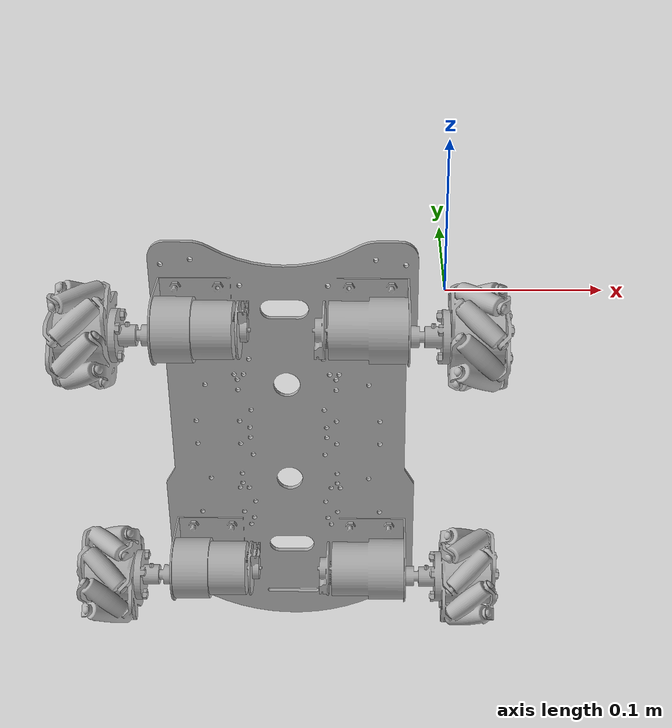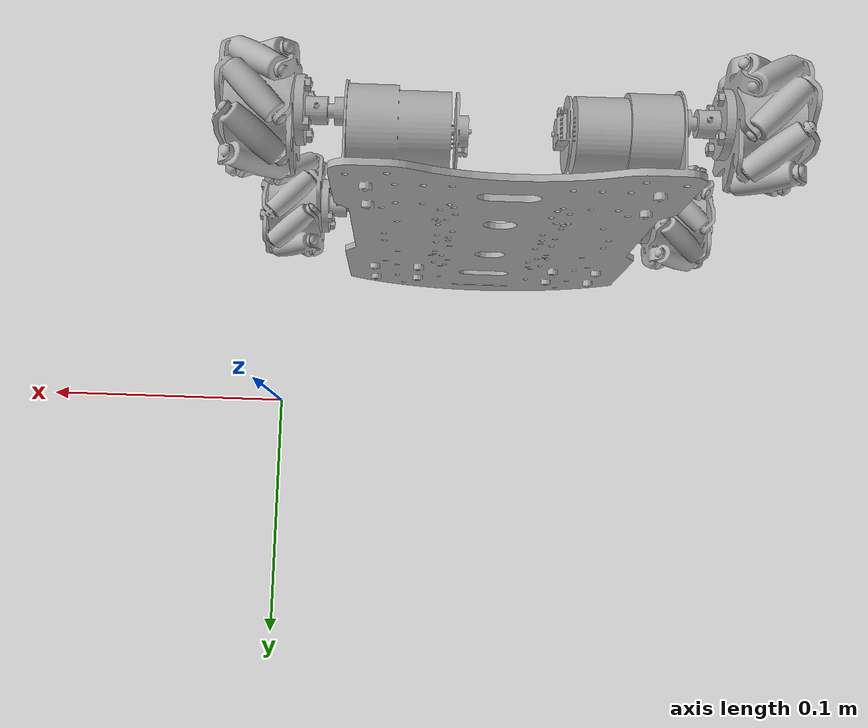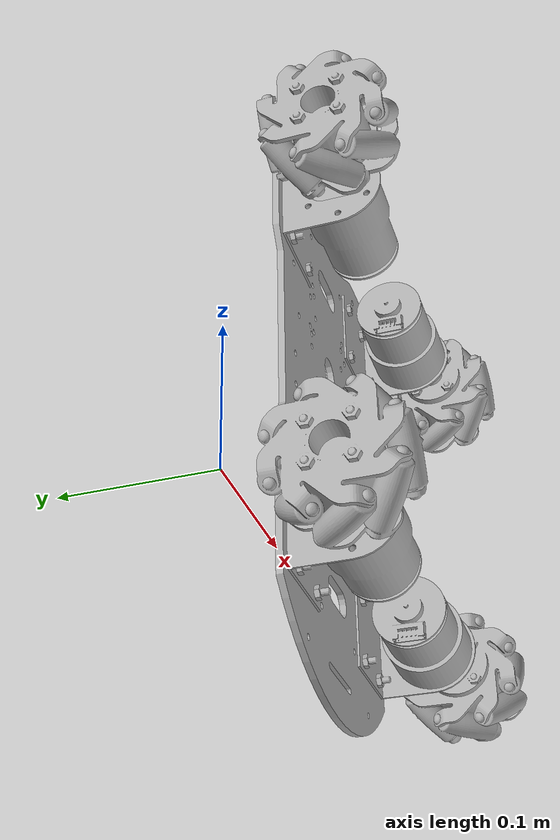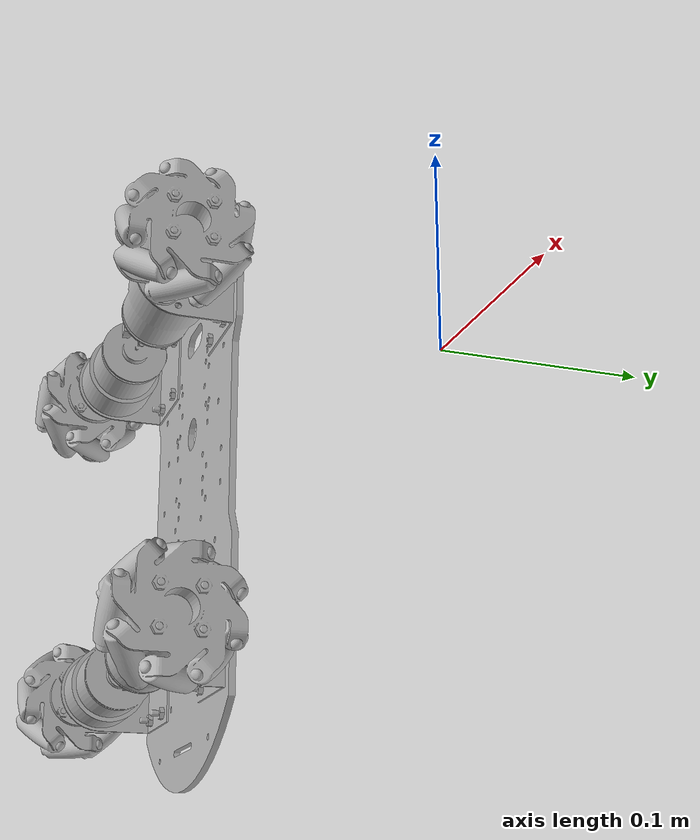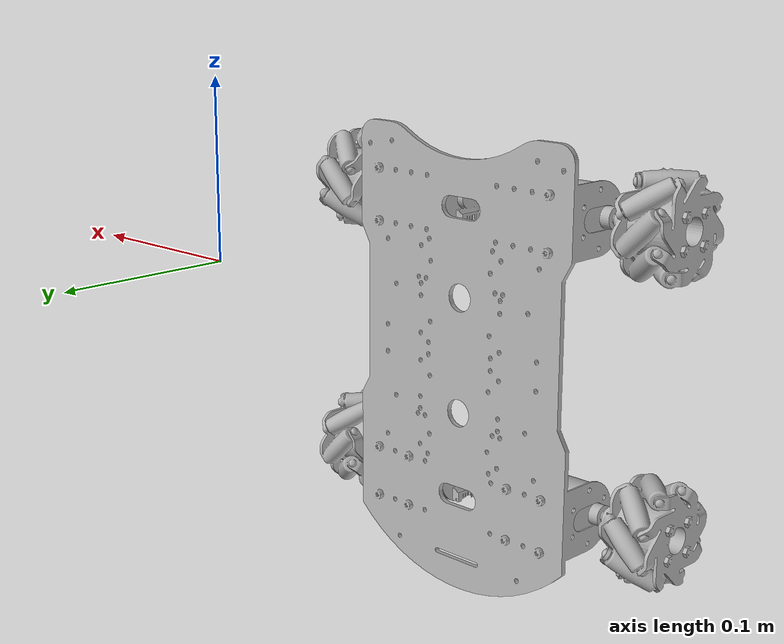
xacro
<?xml version="1.0" ?>
<robot name="Mecanum_BOT" xmlns:xacro="http://www.ros.org/wiki/xacro">

<xacro:include filename="$(find Mecanum_BOT_description)/urdf/materials.xacro" />
<xacro:include filename="$(find Mecanum_BOT_description)/urdf/Mecanum_BOT.trans" />
<xacro:include filename="$(find Mecanum_BOT_description)/urdf/Mecanum_BOT.gazebo" />
<link name="base_link">
  <inertial>
    <origin xyz="-0.09613687705983327 -0.0901015426235175 -0.05749254764089324" rpy="0 0 0"/>
    <mass value="0.16202598075878857"/>
    <inertia ixx="0.000884" iyy="0.001212" izz="0.000337" ixy="0.0" iyz="1e-06" ixz="0.0"/>
  </inertial>
  <visual>
    <origin xyz="0 0 0" rpy="0 0 0"/>
    <geometry>
      <mesh filename="package://Mecanum_BOT_description/meshes/base_link.stl" scale="0.001 0.001 0.001"/>
    </geometry>
    <material name="silver"/>
  </visual>
  <collision>
    <origin xyz="0 0 0" rpy="0 0 0"/>
    <geometry>
      <mesh filename="package://Mecanum_BOT_description/meshes/base_link.stl" scale="0.001 0.001 0.001"/>
    </geometry>
  </collision>
</link>

<link name="left_front_1">
  <inertial>
    <origin xyz="0.02109440662747067 -0.013593183811456369 -0.0076957393506719984" rpy="0 0 0"/>
    <mass value="0.06361248676635128"/>
    <inertia ixx="1e-05" iyy="1.7e-05" izz="1.7e-05" ixy="-0.0" iyz="-0.0" ixz="-0.0"/>
  </inertial>
  <visual>
    <origin xyz="0.166137 0.102603 0.126457" rpy="0 0 0"/>
    <geometry>
      <mesh filename="package://Mecanum_BOT_description/meshes/left_front_1.stl" scale="0.001 0.001 0.001"/>
    </geometry>
    <material name="silver"/>
  </visual>
  <collision>
    <origin xyz="0.166137 0.102603 0.126457" rpy="0 0 0"/>
    <geometry>
      <mesh filename="package://Mecanum_BOT_description/meshes/left_front_1.stl" scale="0.001 0.001 0.001"/>
    </geometry>
  </collision>
</link>

<link name="right_front_1">
  <inertial>
    <origin xyz="-0.021094160747217303 -0.013593183811456369 -0.007804959748854368" rpy="0 0 0"/>
    <mass value="0.06361248676635124"/>
    <inertia ixx="1e-05" iyy="1.7e-05" izz="1.7e-05" ixy="0.0" iyz="0.0" ixz="-0.0"/>
  </inertial>
  <visual>
    <origin xyz="0.026137 0.102603 0.126457" rpy="0 0 0"/>
    <geometry>
      <mesh filename="package://Mecanum_BOT_description/meshes/right_front_1.stl" scale="0.001 0.001 0.001"/>
    </geometry>
    <material name="silver"/>
  </visual>
  <collision>
    <origin xyz="0.026137 0.102603 0.126457" rpy="0 0 0"/>
    <geometry>
      <mesh filename="package://Mecanum_BOT_description/meshes/right_front_1.stl" scale="0.001 0.001 0.001"/>
    </geometry>
  </collision>
</link>

<link name="right_back_1">
  <inertial>
    <origin xyz="-0.021094160747217074 -0.01359318381145655 0.00769504025114574" rpy="0 0 0"/>
    <mass value="0.06361248676635124"/>
    <inertia ixx="1e-05" iyy="1.7e-05" izz="1.7e-05" ixy="0.0" iyz="0.0" ixz="-0.0"/>
  </inertial>
  <visual>
    <origin xyz="0.026137 0.102603 -0.023043" rpy="0 0 0"/>
    <geometry>
      <mesh filename="package://Mecanum_BOT_description/meshes/right_back_1.stl" scale="0.001 0.001 0.001"/>
    </geometry>
    <material name="silver"/>
  </visual>
  <collision>
    <origin xyz="0.026137 0.102603 -0.023043" rpy="0 0 0"/>
    <geometry>
      <mesh filename="package://Mecanum_BOT_description/meshes/right_back_1.stl" scale="0.001 0.001 0.001"/>
    </geometry>
  </collision>
</link>

<link name="left_back_1">
  <inertial>
    <origin xyz="0.02109440662747089 -0.013593183811456633 -0.0076957393506719395" rpy="0 0 0"/>
    <mass value="0.06361248676635121"/>
    <inertia ixx="1e-05" iyy="1.7e-05" izz="1.7e-05" ixy="-0.0" iyz="-0.0" ixz="-0.0"/>
  </inertial>
  <visual>
    <origin xyz="0.166137 0.102603 -0.038543" rpy="0 0 0"/>
    <geometry>
      <mesh filename="package://Mecanum_BOT_description/meshes/left_back_1.stl" scale="0.001 0.001 0.001"/>
    </geometry>
    <material name="silver"/>
  </visual>
  <collision>
    <origin xyz="0.166137 0.102603 -0.038543" rpy="0 0 0"/>
    <geometry>
      <mesh filename="package://Mecanum_BOT_description/meshes/left_back_1.stl" scale="0.001 0.001 0.001"/>
    </geometry>
  </collision>
</link>

<link name="left_front_wheel_1">
  <inertial>
    <origin xyz="-0.030656450570307386 1.6747393109250996e-06 8.586632723739385e-07" rpy="0 0 0"/>
    <mass value="0.15115036053896602"/>
    <inertia ixx="5.4e-05" iyy="4.1e-05" izz="4.1e-05" ixy="0.0" iyz="-0.0" ixz="-0.0"/>
  </inertial>
  <visual>
    <origin xyz="0.172137 0.123026 0.134207" rpy="0 0 0"/>
    <geometry>
      <mesh filename="package://Mecanum_BOT_description/meshes/left_front_wheel_1.stl" scale="0.001 0.001 0.001"/>
    </geometry>
    <material name="silver"/>
  </visual>
  <collision>
    <origin xyz="0.172137 0.123026 0.134207" rpy="0 0 0"/>
    <geometry>
      <mesh filename="package://Mecanum_BOT_description/meshes/left_front_wheel_1.stl" scale="0.001 0.001 0.001"/>
    </geometry>
  </collision>
</link>

<link name="left_back_wheel_1">
  <inertial>
    <origin xyz="-0.030656450570321098 -2.0840838319824417e-06 8.586632726861887e-07" rpy="0 0 0"/>
    <mass value="0.4702455661216154"/>
    <inertia ixx="0.000167" iyy="0.000127" izz="0.000127" ixy="-0.0" iyz="0.0" ixz="-0.0"/>
  </inertial>
  <visual>
    <origin xyz="0.172137 0.123026 -0.030793" rpy="0 0 0"/>
    <geometry>
      <mesh filename="package://Mecanum_BOT_description/meshes/left_back_wheel_1.stl" scale="0.001 0.001 0.001"/>
    </geometry>
    <material name="silver"/>
  </visual>
  <collision>
    <origin xyz="0.172137 0.123026 -0.030793" rpy="0 0 0"/>
    <geometry>
      <mesh filename="package://Mecanum_BOT_description/meshes/left_back_wheel_1.stl" scale="0.001 0.001 0.001"/>
    </geometry>
  </collision>
</link>

<link name="right_back_wheel_1">
  <inertial>
    <origin xyz="0.030656696450539457 -2.0840838093200142e-06 8.586632902554681e-07" rpy="0 0 0"/>
    <mass value="0.151150360538966"/>
    <inertia ixx="5.4e-05" iyy="4.1e-05" izz="4.1e-05" ixy="0.0" iyz="0.0" ixz="0.0"/>
  </inertial>
  <visual>
    <origin xyz="0.020137 0.123026 -0.030793" rpy="0 0 0"/>
    <geometry>
      <mesh filename="package://Mecanum_BOT_description/meshes/right_back_wheel_1.stl" scale="0.001 0.001 0.001"/>
    </geometry>
    <material name="silver"/>
  </visual>
  <collision>
    <origin xyz="0.020137 0.123026 -0.030793" rpy="0 0 0"/>
    <geometry>
      <mesh filename="package://Mecanum_BOT_description/meshes/right_back_wheel_1.stl" scale="0.001 0.001 0.001"/>
    </geometry>
  </collision>
</link>

<link name="right_front_wheel_1">
  <inertial>
    <origin xyz="0.030656696450552964 1.674739333393238e-06 8.586632544715922e-07" rpy="0 0 0"/>
    <mass value="0.1511503605390908"/>
    <inertia ixx="5.4e-05" iyy="4.1e-05" izz="4.1e-05" ixy="-0.0" iyz="-0.0" ixz="0.0"/>
  </inertial>
  <visual>
    <origin xyz="0.020137 0.123026 0.134207" rpy="0 0 0"/>
    <geometry>
      <mesh filename="package://Mecanum_BOT_description/meshes/right_front_wheel_1.stl" scale="0.001 0.001 0.001"/>
    </geometry>
    <material name="silver"/>
  </visual>
  <collision>
    <origin xyz="0.020137 0.123026 0.134207" rpy="0 0 0"/>
    <geometry>
      <mesh filename="package://Mecanum_BOT_description/meshes/right_front_wheel_1.stl" scale="0.001 0.001 0.001"/>
    </geometry>
  </collision>
</link>

<joint name="Rigid5" type="fixed">
  <origin xyz="-0.166137 -0.102603 -0.126457" rpy="0 0 0"/>
  <parent link="base_link"/>
  <child link="left_front_1"/>
</joint>

<joint name="Rigid6" type="fixed">
  <origin xyz="-0.026137 -0.102603 -0.126457" rpy="0 0 0"/>
  <parent link="base_link"/>
  <child link="right_front_1"/>
</joint>

<joint name="Rigid7" type="fixed">
  <origin xyz="-0.026137 -0.102603 0.023043" rpy="0 0 0"/>
  <parent link="base_link"/>
  <child link="right_back_1"/>
</joint>

<joint name="Rigid8" type="fixed">
  <origin xyz="-0.166137 -0.102603 0.038543" rpy="0 0 0"/>
  <parent link="base_link"/>
  <child link="left_back_1"/>
</joint>

<joint name="Rev9" type="continuous">
  <origin xyz="-0.006 -0.020423 -0.00775" rpy="0 0 0"/>
  <parent link="left_front_1"/>
  <child link="left_front_wheel_1"/>
  <axis xyz="-1.0 -0.0 0.0"/>
</joint>

<joint name="Rev10" type="continuous">
  <origin xyz="-0.006 -0.020423 -0.00775" rpy="0 0 0"/>
  <parent link="left_back_1"/>
  <child link="left_back_wheel_1"/>
  <axis xyz="-1.0 -0.0 0.0"/>
</joint>

<joint name="Rev11" type="continuous">
  <origin xyz="0.006 -0.020423 0.00775" rpy="0 0 0"/>
  <parent link="right_back_1"/>
  <child link="right_back_wheel_1"/>
  <axis xyz="1.0 0.0 -0.0"/>
</joint>

<joint name="Rev12" type="continuous">
  <origin xyz="0.006 -0.020423 -0.00775" rpy="0 0 0"/>
  <parent link="right_front_1"/>
  <child link="right_front_wheel_1"/>
  <axis xyz="1.0 0.0 -0.0"/>
</joint>

</robot>

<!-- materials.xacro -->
<robot name="Mecanum_BOT" xmlns:xacro="http://www.ros.org/wiki/xacro" >

<material name="silver">
  <color rgba="0.700 0.700 0.700 1.000"/>
</material>

</robot>

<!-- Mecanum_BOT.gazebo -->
<robot name="Mecanum_BOT" xmlns:xacro="http://www.ros.org/wiki/xacro" >

<xacro:property name="body_color" value="Gazebo/Silver" />

<gazebo>
  <plugin name="control" filename="libgazebo_ros_control.so"/>
</gazebo>
<gazebo reference="base_link">
  <material>${body_color}</material>
  <mu1>0.2</mu1>
  <mu2>0.2</mu2>
  <selfCollide>true</selfCollide>
  <gravity>true</gravity>
</gazebo>

<gazebo reference="left_front_1">
  <material>${body_color}</material>
  <mu1>0.2</mu1>
  <mu2>0.2</mu2>
  <selfCollide>true</selfCollide>
</gazebo>

<gazebo reference="right_front_1">
  <material>${body_color}</material>
  <mu1>0.2</mu1>
  <mu2>0.2</mu2>
  <selfCollide>true</selfCollide>
</gazebo>

<gazebo reference="right_back_1">
  <material>${body_color}</material>
  <mu1>0.2</mu1>
  <mu2>0.2</mu2>
  <selfCollide>true</selfCollide>
</gazebo>

<gazebo reference="left_back_1">
  <material>${body_color}</material>
  <mu1>0.2</mu1>
  <mu2>0.2</mu2>
  <selfCollide>true</selfCollide>
</gazebo>

<gazebo reference="left_front_wheel_1">
  <material>${body_color}</material>
  <mu1>0.2</mu1>
  <mu2>0.2</mu2>
  <selfCollide>true</selfCollide>
</gazebo>

<gazebo reference="left_back_wheel_1">
  <material>${body_color}</material>
  <mu1>0.2</mu1>
  <mu2>0.2</mu2>
  <selfCollide>true</selfCollide>
</gazebo>

<gazebo reference="right_back_wheel_1">
  <material>${body_color}</material>
  <mu1>0.2</mu1>
  <mu2>0.2</mu2>
  <selfCollide>true</selfCollide>
</gazebo>

<gazebo reference="right_front_wheel_1">
  <material>${body_color}</material>
  <mu1>0.2</mu1>
  <mu2>0.2</mu2>
  <selfCollide>true</selfCollide>
</gazebo>

</robot>
